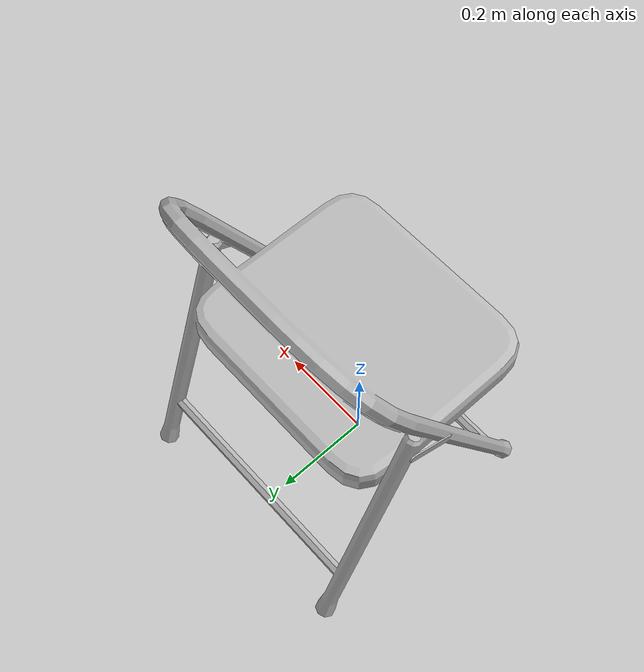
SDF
<?xml version="1.0"?>
<sdf version="1.6">
  <model name="foldable_chair">
    <static>true</static>
    <link name="base_link">
      <visual name="visual">
        <geometry>
          <mesh>
            <scale>0.1 0.1 0.1</scale>
            <uri>model://models/foldable_chair/meshes/foldable_chair.dae</uri>
          </mesh>
        </geometry>
      </visual>
      <collision name="collision">
        <pose>0 0.05 0.4 0 0 0</pose>
        <geometry>
          <box>
            <size>0.5 0.5 0.8</size>
          </box>
        </geometry>
      </collision>
    </link>
  </model>
</sdf>
